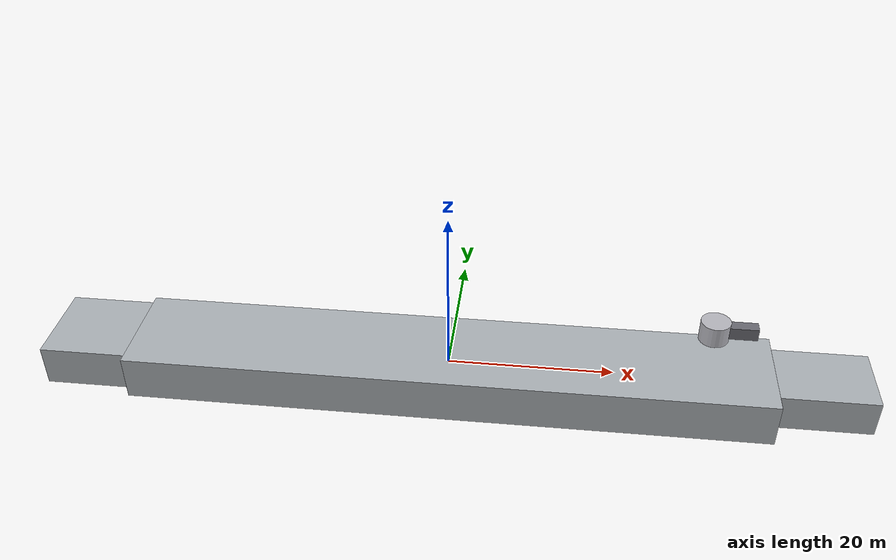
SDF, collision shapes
<?xml version='1.0' encoding='utf-8'?>
<sdf version="1.10">
  <model name="heybeliada_ship_float">
    <static>false</static>
    <self_collide>false</self_collide>
    <link name="ship_link">
      <inertial>
        <pose>0 0 -0.4 0 0 0</pose>
        <mass>2200000</mass>
        <inertia>
          <ixx>4.7e7</ixx>
          <iyy>1.7e9</iyy>
          <izz>1.7e9</izz>
          <ixy>0</ixy>
          <ixz>0</ixz>
          <iyz>0</iyz>
        </inertia>
      </inertial>
      <visual name="ship_gray_visual">
        <geometry>
          <mesh>
            <uri>model://heybeliada_ship_float/meshes/ship_gray.glb</uri>
          </mesh>
        </geometry>
        <material>
          <ambient>0.52 0.54 0.56 1</ambient>
          <diffuse>0.68 0.70 0.72 1</diffuse>
          <specular>0.08 0.08 0.08 1</specular>
        </material>
      </visual>
      <visual name="deck_tan_visual">
        <geometry>
          <mesh>
            <uri>model://heybeliada_ship_float/meshes/deck_tan.glb</uri>
          </mesh>
        </geometry>
        <material>
          <ambient>0.48 0.35 0.29 1</ambient>
          <diffuse>0.67 0.49 0.39 1</diffuse>
          <specular>0.08 0.08 0.08 1</specular>
        </material>
      </visual>
      <visual name="railings_gray_visual">
        <geometry>
          <mesh>
            <uri>model://heybeliada_ship_float/meshes/railings_gray.glb</uri>
          </mesh>
        </geometry>
        <material>
          <ambient>0.55 0.57 0.59 1</ambient>
          <diffuse>0.76 0.78 0.80 1</diffuse>
          <specular>0.08 0.08 0.08 1</specular>
        </material>
      </visual>
      <visual name="glass_black_visual">
        <geometry>
          <mesh>
            <uri>model://heybeliada_ship_float/meshes/glass_black.glb</uri>
          </mesh>
        </geometry>
        <material>
          <ambient>0.01 0.015 0.02 1</ambient>
          <diffuse>0.015 0.025 0.035 1</diffuse>
          <specular>0.08 0.08 0.08 1</specular>
        </material>
      </visual>
      <visual name="shaft_gray_visual">
        <geometry>
          <mesh>
            <uri>model://heybeliada_ship_float/meshes/shaft_gray.glb</uri>
          </mesh>
        </geometry>
        <material>
          <ambient>0.35 0.35 0.37 1</ambient>
          <diffuse>0.58 0.58 0.60 1</diffuse>
          <specular>0.08 0.08 0.08 1</specular>
        </material>
      </visual>
      <visual name="propeller_gold_visual">
        <geometry>
          <mesh>
            <uri>model://heybeliada_ship_float/meshes/propeller_gold.glb</uri>
          </mesh>
        </geometry>
        <material>
          <ambient>0.42 0.28 0.02 1</ambient>
          <diffuse>0.85 0.60 0.08 1</diffuse>
          <specular>0.08 0.08 0.08 1</specular>
        </material>
      </visual>
      <visual name="hull_red_visual">
        <geometry>
          <mesh>
            <uri>model://heybeliada_ship_float/meshes/hull_red.glb</uri>
          </mesh>
        </geometry>
        <material>
          <ambient>0.28 0.015 0.02 1</ambient>
          <diffuse>0.55 0.025 0.035 1</diffuse>
          <specular>0.08 0.08 0.08 1</specular>
        </material>
      </visual>
      <visual name="waterline_black_visual">
        <geometry>
          <mesh>
            <uri>model://heybeliada_ship_float/meshes/waterline_black.glb</uri>
          </mesh>
        </geometry>
        <material>
          <ambient>0.01 0.01 0.01 1</ambient>
          <diffuse>0.025 0.025 0.025 1</diffuse>
          <specular>0.08 0.08 0.08 1</specular>
        </material>
      </visual>
      <visual name="flag_red_visual">
        <geometry>
          <mesh>
            <uri>model://heybeliada_ship_float/meshes/flag_red.glb</uri>
          </mesh>
        </geometry>
        <material>
          <ambient>0.45 0.0 0.0 1</ambient>
          <diffuse>0.88 0.0 0.0 1</diffuse>
          <specular>0.08 0.08 0.08 1</specular>
        </material>
      </visual>
      <visual name="flag_white_visual">
        <geometry>
          <mesh>
            <uri>model://heybeliada_ship_float/meshes/flag_white.glb</uri>
          </mesh>
        </geometry>
        <material>
          <ambient>0.75 0.75 0.75 1</ambient>
          <diffuse>1 1 1 1</diffuse>
          <specular>0.08 0.08 0.08 1</specular>
        </material>
      </visual>
      <collision name="hull_collision_center">
        <pose>0 0 -1.0 0 0 0</pose>
        <geometry>
          <box>
            <size>78 13 5.5</size>
          </box>
        </geometry>
        <surface>
          <contact>
            <category_bitmask>0x01</category_bitmask>
            <collide_bitmask>0x01</collide_bitmask>
          </contact>
        </surface>
      </collision>
      <collision name="hull_collision_bow">
        <pose>42 0 -0.6 0 0 0</pose>
        <geometry>
          <box>
            <size>17 9 4.5</size>
          </box>
        </geometry>
        <surface>
          <contact>
            <category_bitmask>0x01</category_bitmask>
            <collide_bitmask>0x01</collide_bitmask>
          </contact>
        </surface>
      </collision>
      <collision name="hull_collision_stern">
        <pose>-43 0 -0.8 0 0 0</pose>
        <geometry>
          <box>
            <size>13 11 5</size>
          </box>
        </geometry>
        <surface>
          <contact>
            <category_bitmask>0x01</category_bitmask>
            <collide_bitmask>0x01</collide_bitmask>
          </contact>
        </surface>
      </collision>
      <!-- AKSY_NAMEPLATE_BEGIN -->

      <!-- İskele / sol taraf -->
      <visual name="port_side_aksy_nameplate">
        <pose>20.0 7.40 1.74 0 0 0</pose>
        <geometry>
          <plane>
            <normal>0 1 0</normal>
            <size>16.0 4.8</size>
          </plane>
        </geometry>
        <material>
          <ambient>1 1 1 1</ambient>
          <diffuse>1 1 1 1</diffuse>
          <specular>0 0 0 1</specular>
          <pbr>
            <metal>
              <albedo_map>model://heybeliada_ship_float/materials/textures/heybeliada_nameplate_black_flipv.png</albedo_map>
              <metalness>0.0</metalness>
              <roughness>1.0</roughness>
            </metal>
          </pbr>
        </material>
        <cast_shadows>false</cast_shadows>
      </visual>

      <!-- Sancak / sağ taraf -->
      <visual name="starboard_side_aksy_nameplate">
        <pose>20.0 -7.40 1.74 0 0 0</pose>
        <geometry>
          <plane>
            <normal>0 -1 0</normal>
            <size>16.0 4.8</size>
          </plane>
        </geometry>
        <material>
          <ambient>1 1 1 1</ambient>
          <diffuse>1 1 1 1</diffuse>
          <specular>0 0 0 1</specular>
          <pbr>
            <metal>
              <albedo_map>model://heybeliada_ship_float/materials/textures/heybeliada_nameplate_black_flipv.png</albedo_map>
              <metalness>0.0</metalness>
              <roughness>1.0</roughness>
            </metal>
          </pbr>
        </material>
        <cast_shadows>false</cast_shadows>
      </visual>

      <!-- AKSY_NAMEPLATE_END -->

    </link>
    <link name="pan_link">
      <pose relative_to="ship_link">31.057680 0.000000 6.183503 0 0 0</pose>
      <inertial>
        <mass>80</mass>
        <inertia>
          <ixx>90</ixx>
          <iyy>90</iyy>
          <izz>120</izz>
          <ixy>0</ixy>
          <ixz>0</ixz>
          <iyz>0</iyz>
        </inertia>
      </inertial>
      <visual name="pan_visual">
        <geometry>
          <mesh><uri>model://heybeliada_ship_float/meshes/turret_pan_76mm.glb</uri></mesh>
        </geometry>
        <material>
          <ambient>0.55 0.55 0.58 1</ambient>
          <diffuse>0.72 0.72 0.75 1</diffuse>
        </material>
      </visual>
      <collision name="pan_collision">
        <pose>0 0 1.25 0 0 0</pose>
        <geometry>
          <cylinder>
            <radius>1.75</radius>
            <length>2.5</length>
          </cylinder>
        </geometry>
        <surface>
          <contact>
            <category_bitmask>0x01</category_bitmask>
            <collide_bitmask>0x01</collide_bitmask>
          </contact>
        </surface>
      </collision>
    </link>
    <joint name="pan_joint" type="revolute">
      <parent>ship_link</parent>
      <child>pan_link</child>
      <axis>
        <xyz>0 0 1</xyz>
        <limit>
          <lower>-2.617994</lower>
          <upper>2.617994</upper>
          <effort>100000</effort>
          <velocity>0.8</velocity>
        </limit>
        <dynamics>
          <damping>15</damping>
          <friction>2</friction>
        </dynamics>
      </axis>
    </joint>
    <link name="tilt_link">
      <pose relative_to="pan_link">0.113315 0 1.351354 0 0 0</pose>
      <inertial>
        <pose>1.5 0 0 0 0 0</pose>
        <mass>35</mass>
        <inertia>
          <ixx>30</ixx>
          <iyy>100</iyy>
          <izz>100</izz>
          <ixy>0</ixy>
          <ixz>0</ixz>
          <iyz>0</iyz>
        </inertia>
      </inertial>
      <visual name="tilt_visual">
        <geometry>
          <mesh><uri>model://heybeliada_ship_float/meshes/gun_tilt_76mm.glb</uri></mesh>
        </geometry>
        <material>
          <ambient>0.28 0.28 0.30 1</ambient>
          <diffuse>0.42 0.42 0.45 1</diffuse>
        </material>
      </visual>
      <collision name="tilt_collision">
        <pose>2.2 0 0 0 0 0</pose>
        <geometry>
          <box>
            <size>5.2 1.4 1.5</size>
          </box>
        </geometry>
        <surface>
          <contact>
            <category_bitmask>0x01</category_bitmask>
            <collide_bitmask>0x01</collide_bitmask>
          </contact>
        </surface>
      </collision>
    </link>
    <link name="muzzle_link">
      <pose relative_to="tilt_link">5.35 0 0 0 0 0</pose>
      <inertial>
        <mass>0.01</mass>
        <inertia>
          <ixx>0.00001</ixx>
          <iyy>0.00001</iyy>
          <izz>0.00001</izz>
          <ixy>0</ixy>
          <ixz>0</ixz>
          <iyz>0</iyz>
        </inertia>
      </inertial>
    </link>
    <joint name="muzzle_fixed_joint" type="fixed">
      <parent>tilt_link</parent>
      <child>muzzle_link</child>
    </joint>
    <joint name="tilt_joint" type="revolute">
      <parent>pan_link</parent>
      <child>tilt_link</child>
      <axis>
        <xyz>0 -1 0</xyz>
        <limit>
          <lower>-0.0872665</lower>
          <upper>1.2217305</upper>
          <effort>100000</effort>
          <velocity>0.6</velocity>
        </limit>
        <dynamics>
          <damping>10</damping>
          <friction>1</friction>
        </dynamics>
      </axis>
    </joint>
    <plugin filename="gz-sim-joint-position-controller-system" name="gz::sim::systems::JointPositionController">
      <joint_name>pan_joint</joint_name>
      <topic>/heybeliada/pan_cmd</topic>
      <use_velocity_commands>true</use_velocity_commands>
      <cmd_max>0.35</cmd_max>
      <initial_position>0.0</initial_position>
    </plugin>
    <plugin filename="gz-sim-joint-position-controller-system" name="gz::sim::systems::JointPositionController">
      <joint_name>tilt_joint</joint_name>
      <topic>/heybeliada/tilt_cmd</topic>
      <use_velocity_commands>true</use_velocity_commands>
      <cmd_max>0.20</cmd_max>
      <initial_position>0.0</initial_position>
    </plugin>
    <plugin filename="gz-sim-joint-state-publisher-system" name="gz::sim::systems::JointStatePublisher" />
    <plugin filename="gz-sim-pose-publisher-system" name="gz::sim::systems::PosePublisher">
      <publish_link_pose>true</publish_link_pose>
      <publish_visual_pose>false</publish_visual_pose>
      <publish_collision_pose>false</publish_collision_pose>
      <publish_sensor_pose>false</publish_sensor_pose>
      <publish_model_pose>true</publish_model_pose>
      <use_pose_vector_msg>true</use_pose_vector_msg>
      <update_frequency>30</update_frequency>
      <static_publisher>false</static_publisher>
    </plugin>
    <plugin filename="libSurface.so" name="maritime::Surface">
      <link_name>ship_link</link_name>
      <hull_length>90.0</hull_length>
      <hull_radius>3.3</hull_radius>
      <fluid_level>0.0</fluid_level>
      <fluid_density>1000.0</fluid_density>
      <points>
        <point>35.0 5.0 -1.5</point>
        <point>-35.0 5.0 -1.5</point>
      </points>
      <wavefield>
        <topic>/gazebo/wavefield/parameters</topic>
      </wavefield>
    </plugin>
    <plugin filename="libSurface.so" name="maritime::Surface">
      <link_name>ship_link</link_name>
      <hull_length>90.0</hull_length>
      <hull_radius>3.3</hull_radius>
      <fluid_level>0.0</fluid_level>
      <fluid_density>1000.0</fluid_density>
      <points>
        <point>35.0 -5.0 -1.5</point>
        <point>-35.0 -5.0 -1.5</point>
      </points>
      <wavefield>
        <topic>/gazebo/wavefield/parameters</topic>
      </wavefield>
    </plugin>
    <plugin filename="gz-sim-hydrodynamics-system" name="gz::sim::systems::Hydrodynamics">
      <link_name>ship_link</link_name>
      <xU>-250000.0</xU>
      <xAbsU>-100000.0</xAbsU>
      <yV>-700000.0</yV>
      <yAbsV>-200000.0</yAbsV>
      <zW>-1500000.0</zW>
      <kP>-30000000.0</kP>
      <mQ>-500000000.0</mQ>
      <nR>-350000000.0</nR>
      <nAbsR>-100000000.0</nAbsR>
    </plugin>

  <!-- AKSY_VELOCITY_CONTROL_BEGIN -->
  <!-- Telefon üzerinden kontrollü platform hareketi -->
  <plugin
    filename="gz-sim-velocity-control-system"
    name="gz::sim::systems::VelocityControl">
  </plugin>
  <!-- AKSY_VELOCITY_CONTROL_END -->

</model>
</sdf>
